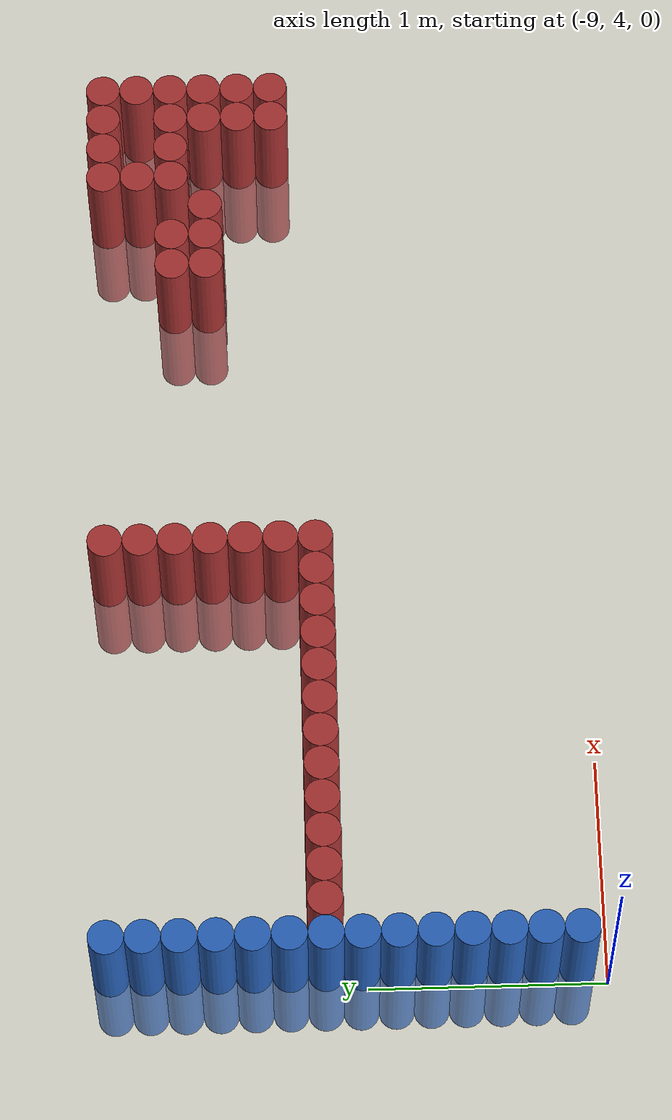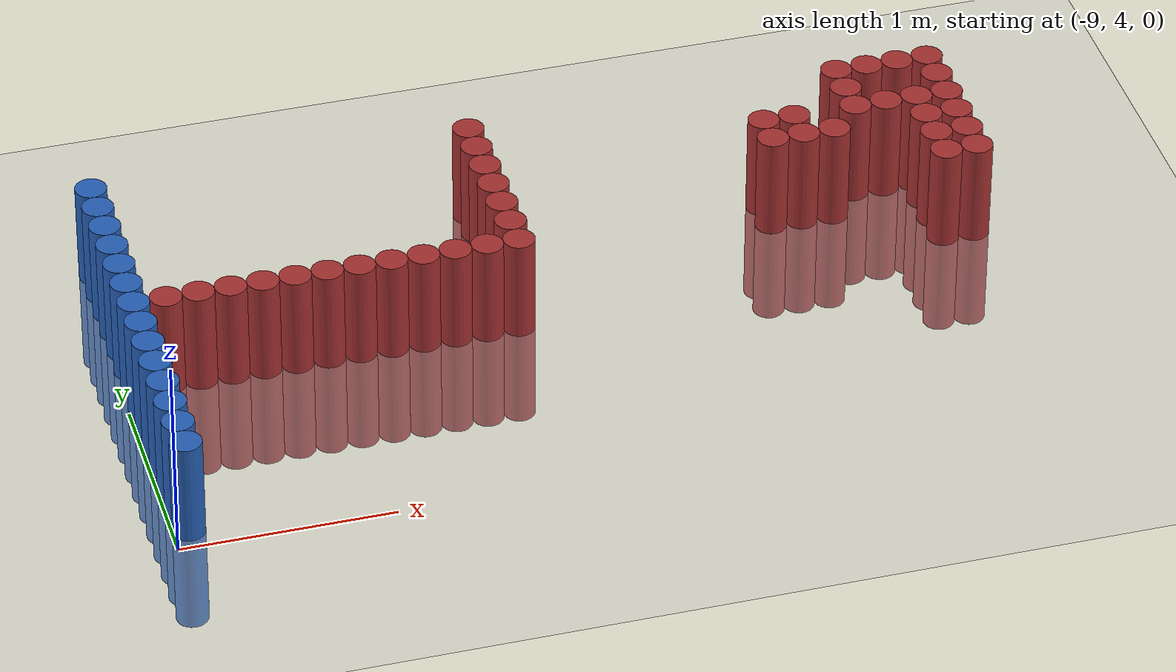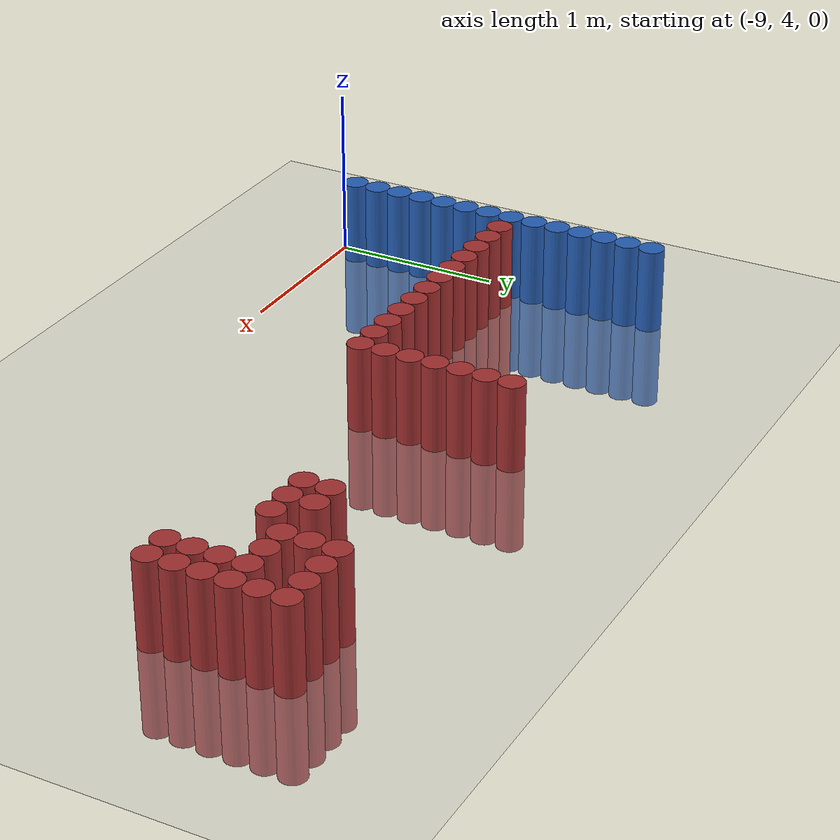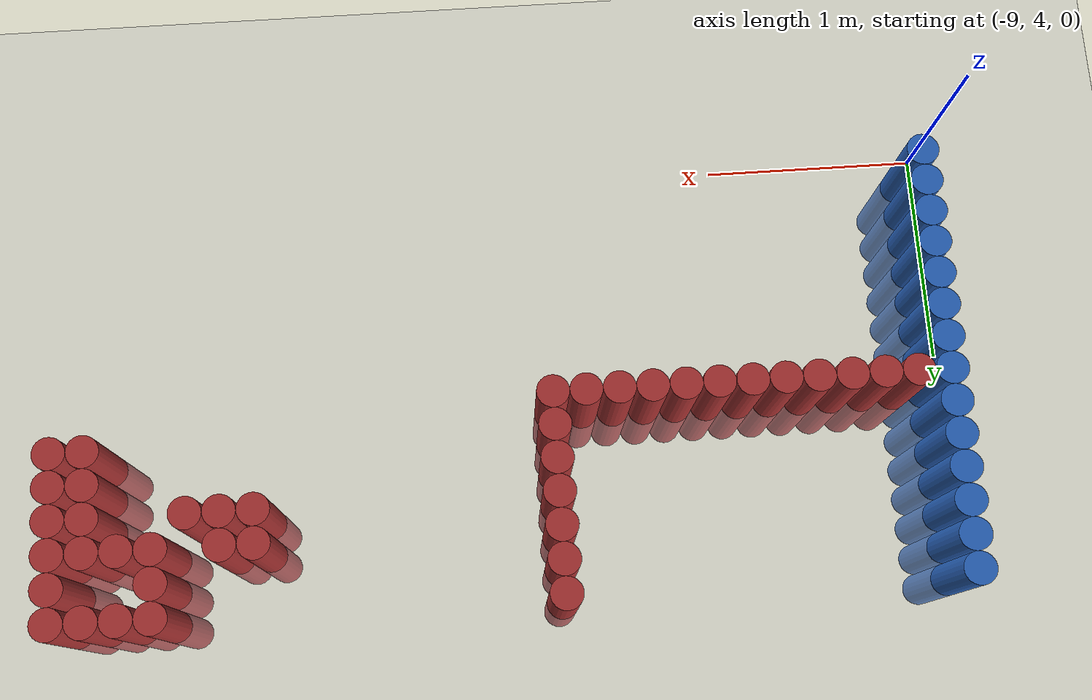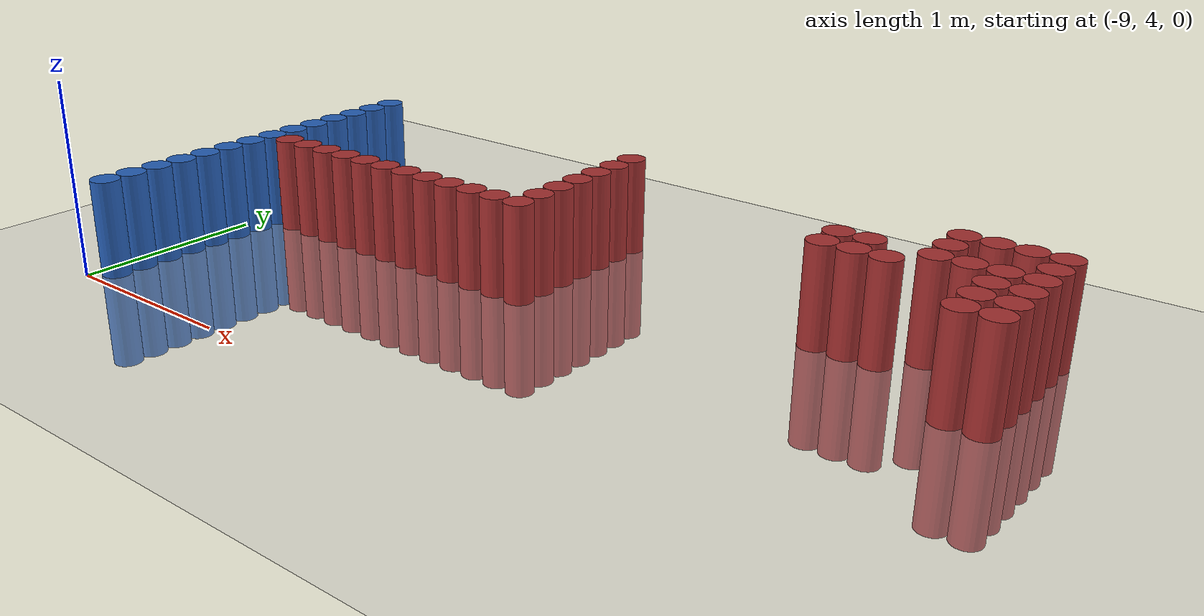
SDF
<sdf version="1.6">
 <world name="default">
  <model name="ground_plane">
   <static>1</static>
   <link name="link">
    <collision name="collision">
     <geometry><plane><normal>0 0 1</normal><size>100 100</size></plane></geometry>
     <surface><friction><ode><mu>100</mu><mu2>50</mu2></ode></friction></surface>
    </collision>
    <visual name="visual">
     <cast_shadows>0</cast_shadows>
     <geometry><plane><normal>0 0 1</normal><size>100 100</size></plane></geometry>
     <material>
      <script><uri>file://media/materials/scripts/gazebo.material</uri><name>Gazebo/Grey</name></script>
     </material>
    </visual>
   </link>
  </model>
  <model name="unit_cylinder_112">
   <static>1</static>
   <pose>-8.925000 4.125000 0.000000 0.000000 0.000000 0.000000</pose>
   <link name="link">
    <inertial>
     <mass>1</mass>
     <inertia><ixx>0.145833</ixx><ixy>0</ixy><ixz>0</ixz><iyy>0.145833</iyy><iyz>0</iyz><izz>0.125</izz></inertia>
    </inertial>
    <collision name="collision">
     <geometry><cylinder><radius>0.075000</radius><length>1</length></cylinder></geometry>
    </collision>
    <visual name="visual">
     <geometry><cylinder><radius>0.075000</radius><length>1</length></cylinder></geometry>
     <material>
      <ambient>0.152000 0.379000 0.720000 1</ambient>
      <diffuse>0.152000 0.379000 0.720000 1</diffuse>
     </material>
     <material>
      <script><name>Gazebo/Grey</name><uri>file://media/materials/scripts/gazebo.material</uri></script>
     </material>
    </visual>
   </link>
  </model>
  <model name="unit_cylinder_114">
   <static>1</static>
   <pose>-8.925000 4.275000 0.000000 0.000000 0.000000 0.000000</pose>
   <link name="link">
    <inertial>
     <mass>1</mass>
     <inertia><ixx>0.145833</ixx><ixy>0</ixy><ixz>0</ixz><iyy>0.145833</iyy><iyz>0</iyz><izz>0.125</izz></inertia>
    </inertial>
    <collision name="collision">
     <geometry><cylinder><radius>0.075000</radius><length>1</length></cylinder></geometry>
    </collision>
    <visual name="visual">
     <geometry><cylinder><radius>0.075000</radius><length>1</length></cylinder></geometry>
     <material>
      <ambient>0.152000 0.379000 0.720000 1</ambient>
      <diffuse>0.152000 0.379000 0.720000 1</diffuse>
     </material>
     <material>
      <script><name>Gazebo/Grey</name><uri>file://media/materials/scripts/gazebo.material</uri></script>
     </material>
    </visual>
   </link>
  </model>
  <model name="unit_cylinder_116">
   <static>1</static>
   <pose>-8.925000 4.425000 0.000000 0.000000 0.000000 0.000000</pose>
   <link name="link">
    <inertial>
     <mass>1</mass>
     <inertia><ixx>0.145833</ixx><ixy>0</ixy><ixz>0</ixz><iyy>0.145833</iyy><iyz>0</iyz><izz>0.125</izz></inertia>
    </inertial>
    <collision name="collision">
     <geometry><cylinder><radius>0.075000</radius><length>1</length></cylinder></geometry>
    </collision>
    <visual name="visual">
     <geometry><cylinder><radius>0.075000</radius><length>1</length></cylinder></geometry>
     <material>
      <ambient>0.152000 0.379000 0.720000 1</ambient>
      <diffuse>0.152000 0.379000 0.720000 1</diffuse>
     </material>
     <material>
      <script><name>Gazebo/Grey</name><uri>file://media/materials/scripts/gazebo.material</uri></script>
     </material>
    </visual>
   </link>
  </model>
  <model name="unit_cylinder_118">
   <static>1</static>
   <pose>-8.925000 4.575000 0.000000 0.000000 0.000000 0.000000</pose>
   <link name="link">
    <inertial>
     <mass>1</mass>
     <inertia><ixx>0.145833</ixx><ixy>0</ixy><ixz>0</ixz><iyy>0.145833</iyy><iyz>0</iyz><izz>0.125</izz></inertia>
    </inertial>
    <collision name="collision">
     <geometry><cylinder><radius>0.075000</radius><length>1</length></cylinder></geometry>
    </collision>
    <visual name="visual">
     <geometry><cylinder><radius>0.075000</radius><length>1</length></cylinder></geometry>
     <material>
      <ambient>0.152000 0.379000 0.720000 1</ambient>
      <diffuse>0.152000 0.379000 0.720000 1</diffuse>
     </material>
     <material>
      <script><name>Gazebo/Grey</name><uri>file://media/materials/scripts/gazebo.material</uri></script>
     </material>
    </visual>
   </link>
  </model>
  <model name="unit_cylinder_120">
   <static>1</static>
   <pose>-8.925000 4.725000 0.000000 0.000000 0.000000 0.000000</pose>
   <link name="link">
    <inertial>
     <mass>1</mass>
     <inertia><ixx>0.145833</ixx><ixy>0</ixy><ixz>0</ixz><iyy>0.145833</iyy><iyz>0</iyz><izz>0.125</izz></inertia>
    </inertial>
    <collision name="collision">
     <geometry><cylinder><radius>0.075000</radius><length>1</length></cylinder></geometry>
    </collision>
    <visual name="visual">
     <geometry><cylinder><radius>0.075000</radius><length>1</length></cylinder></geometry>
     <material>
      <ambient>0.152000 0.379000 0.720000 1</ambient>
      <diffuse>0.152000 0.379000 0.720000 1</diffuse>
     </material>
     <material>
      <script><name>Gazebo/Grey</name><uri>file://media/materials/scripts/gazebo.material</uri></script>
     </material>
    </visual>
   </link>
  </model>
  <model name="unit_cylinder_122">
   <static>1</static>
   <pose>-8.925000 4.875000 0.000000 0.000000 0.000000 0.000000</pose>
   <link name="link">
    <inertial>
     <mass>1</mass>
     <inertia><ixx>0.145833</ixx><ixy>0</ixy><ixz>0</ixz><iyy>0.145833</iyy><iyz>0</iyz><izz>0.125</izz></inertia>
    </inertial>
    <collision name="collision">
     <geometry><cylinder><radius>0.075000</radius><length>1</length></cylinder></geometry>
    </collision>
    <visual name="visual">
     <geometry><cylinder><radius>0.075000</radius><length>1</length></cylinder></geometry>
     <material>
      <ambient>0.152000 0.379000 0.720000 1</ambient>
      <diffuse>0.152000 0.379000 0.720000 1</diffuse>
     </material>
     <material>
      <script><name>Gazebo/Grey</name><uri>file://media/materials/scripts/gazebo.material</uri></script>
     </material>
    </visual>
   </link>
  </model>
  <model name="unit_cylinder_124">
   <static>1</static>
   <pose>-8.925000 5.025000 0.000000 0.000000 0.000000 0.000000</pose>
   <link name="link">
    <inertial>
     <mass>1</mass>
     <inertia><ixx>0.145833</ixx><ixy>0</ixy><ixz>0</ixz><iyy>0.145833</iyy><iyz>0</iyz><izz>0.125</izz></inertia>
    </inertial>
    <collision name="collision">
     <geometry><cylinder><radius>0.075000</radius><length>1</length></cylinder></geometry>
    </collision>
    <visual name="visual">
     <geometry><cylinder><radius>0.075000</radius><length>1</length></cylinder></geometry>
     <material>
      <ambient>0.152000 0.379000 0.720000 1</ambient>
      <diffuse>0.152000 0.379000 0.720000 1</diffuse>
     </material>
     <material>
      <script><name>Gazebo/Grey</name><uri>file://media/materials/scripts/gazebo.material</uri></script>
     </material>
    </visual>
   </link>
  </model>
  <model name="unit_cylinder_125">
   <static>1</static>
   <pose>-8.925000 5.175000 0.000000 0.000000 0.000000 0.000000</pose>
   <link name="link">
    <inertial>
     <mass>1</mass>
     <inertia><ixx>0.145833</ixx><ixy>0</ixy><ixz>0</ixz><iyy>0.145833</iyy><iyz>0</iyz><izz>0.125</izz></inertia>
    </inertial>
    <collision name="collision">
     <geometry><cylinder><radius>0.075000</radius><length>1</length></cylinder></geometry>
    </collision>
    <visual name="visual">
     <geometry><cylinder><radius>0.075000</radius><length>1</length></cylinder></geometry>
     <material>
      <ambient>0.152000 0.379000 0.720000 1</ambient>
      <diffuse>0.152000 0.379000 0.720000 1</diffuse>
     </material>
     <material>
      <script><name>Gazebo/Grey</name><uri>file://media/materials/scripts/gazebo.material</uri></script>
     </material>
    </visual>
   </link>
  </model>
  <model name="unit_cylinder_126">
   <static>1</static>
   <pose>-8.925000 5.325000 0.000000 0.000000 0.000000 0.000000</pose>
   <link name="link">
    <inertial>
     <mass>1</mass>
     <inertia><ixx>0.145833</ixx><ixy>0</ixy><ixz>0</ixz><iyy>0.145833</iyy><iyz>0</iyz><izz>0.125</izz></inertia>
    </inertial>
    <collision name="collision">
     <geometry><cylinder><radius>0.075000</radius><length>1</length></cylinder></geometry>
    </collision>
    <visual name="visual">
     <geometry><cylinder><radius>0.075000</radius><length>1</length></cylinder></geometry>
     <material>
      <ambient>0.152000 0.379000 0.720000 1</ambient>
      <diffuse>0.152000 0.379000 0.720000 1</diffuse>
     </material>
     <material>
      <script><name>Gazebo/Grey</name><uri>file://media/materials/scripts/gazebo.material</uri></script>
     </material>
    </visual>
   </link>
  </model>
  <model name="unit_cylinder_127">
   <static>1</static>
   <pose>-8.925000 5.475000 0.000000 0.000000 0.000000 0.000000</pose>
   <link name="link">
    <inertial>
     <mass>1</mass>
     <inertia><ixx>0.145833</ixx><ixy>0</ixy><ixz>0</ixz><iyy>0.145833</iyy><iyz>0</iyz><izz>0.125</izz></inertia>
    </inertial>
    <collision name="collision">
     <geometry><cylinder><radius>0.075000</radius><length>1</length></cylinder></geometry>
    </collision>
    <visual name="visual">
     <geometry><cylinder><radius>0.075000</radius><length>1</length></cylinder></geometry>
     <material>
      <ambient>0.152000 0.379000 0.720000 1</ambient>
      <diffuse>0.152000 0.379000 0.720000 1</diffuse>
     </material>
     <material>
      <script><name>Gazebo/Grey</name><uri>file://media/materials/scripts/gazebo.material</uri></script>
     </material>
    </visual>
   </link>
  </model>
  <model name="unit_cylinder_128">
   <static>1</static>
   <pose>-8.925000 5.625000 0.000000 0.000000 0.000000 0.000000</pose>
   <link name="link">
    <inertial>
     <mass>1</mass>
     <inertia><ixx>0.145833</ixx><ixy>0</ixy><ixz>0</ixz><iyy>0.145833</iyy><iyz>0</iyz><izz>0.125</izz></inertia>
    </inertial>
    <collision name="collision">
     <geometry><cylinder><radius>0.075000</radius><length>1</length></cylinder></geometry>
    </collision>
    <visual name="visual">
     <geometry><cylinder><radius>0.075000</radius><length>1</length></cylinder></geometry>
     <material>
      <ambient>0.152000 0.379000 0.720000 1</ambient>
      <diffuse>0.152000 0.379000 0.720000 1</diffuse>
     </material>
     <material>
      <script><name>Gazebo/Grey</name><uri>file://media/materials/scripts/gazebo.material</uri></script>
     </material>
    </visual>
   </link>
  </model>
  <model name="unit_cylinder_129">
   <static>1</static>
   <pose>-8.925000 5.775000 0.000000 0.000000 0.000000 0.000000</pose>
   <link name="link">
    <inertial>
     <mass>1</mass>
     <inertia><ixx>0.145833</ixx><ixy>0</ixy><ixz>0</ixz><iyy>0.145833</iyy><iyz>0</iyz><izz>0.125</izz></inertia>
    </inertial>
    <collision name="collision">
     <geometry><cylinder><radius>0.075000</radius><length>1</length></cylinder></geometry>
    </collision>
    <visual name="visual">
     <geometry><cylinder><radius>0.075000</radius><length>1</length></cylinder></geometry>
     <material>
      <ambient>0.152000 0.379000 0.720000 1</ambient>
      <diffuse>0.152000 0.379000 0.720000 1</diffuse>
     </material>
     <material>
      <script><name>Gazebo/Grey</name><uri>file://media/materials/scripts/gazebo.material</uri></script>
     </material>
    </visual>
   </link>
  </model>
  <model name="unit_cylinder_130">
   <static>1</static>
   <pose>-8.925000 5.925000 0.000000 0.000000 0.000000 0.000000</pose>
   <link name="link">
    <inertial>
     <mass>1</mass>
     <inertia><ixx>0.145833</ixx><ixy>0</ixy><ixz>0</ixz><iyy>0.145833</iyy><iyz>0</iyz><izz>0.125</izz></inertia>
    </inertial>
    <collision name="collision">
     <geometry><cylinder><radius>0.075000</radius><length>1</length></cylinder></geometry>
    </collision>
    <visual name="visual">
     <geometry><cylinder><radius>0.075000</radius><length>1</length></cylinder></geometry>
     <material>
      <ambient>0.152000 0.379000 0.720000 1</ambient>
      <diffuse>0.152000 0.379000 0.720000 1</diffuse>
     </material>
     <material>
      <script><name>Gazebo/Grey</name><uri>file://media/materials/scripts/gazebo.material</uri></script>
     </material>
    </visual>
   </link>
  </model>
  <model name="unit_cylinder_131">
   <static>1</static>
   <pose>-8.925000 6.075000 0.000000 0.000000 0.000000 0.000000</pose>
   <link name="link">
    <inertial>
     <mass>1</mass>
     <inertia><ixx>0.145833</ixx><ixy>0</ixy><ixz>0</ixz><iyy>0.145833</iyy><iyz>0</iyz><izz>0.125</izz></inertia>
    </inertial>
    <collision name="collision">
     <geometry><cylinder><radius>0.075000</radius><length>1</length></cylinder></geometry>
    </collision>
    <visual name="visual">
     <geometry><cylinder><radius>0.075000</radius><length>1</length></cylinder></geometry>
     <material>
      <ambient>0.152000 0.379000 0.720000 1</ambient>
      <diffuse>0.152000 0.379000 0.720000 1</diffuse>
     </material>
     <material>
      <script><name>Gazebo/Grey</name><uri>file://media/materials/scripts/gazebo.material</uri></script>
     </material>
    </visual>
   </link>
  </model>
  <model name="unit_cylinder_155">
   <static>1</static>
   <pose>-8.775000 5.175000 0.000000 0.000000 0.000000 0.000000</pose>
   <link name="link">
    <inertial>
     <mass>1</mass>
     <inertia><ixx>0.145833</ixx><ixy>0</ixy><ixz>0</ixz><iyy>0.145833</iyy><iyz>0</iyz><izz>0.125</izz></inertia>
    </inertial>
    <collision name="collision">
     <geometry><cylinder><radius>0.075000</radius><length>1</length></cylinder></geometry>
    </collision>
    <visual name="visual">
     <geometry><cylinder><radius>0.075000</radius><length>1</length></cylinder></geometry>
     <material>
      <ambient>0.648000 0.192000 0.192000 1</ambient>
      <diffuse>0.648000 0.192000 0.192000 1</diffuse>
     </material>
     <material>
      <script><name>Gazebo/Grey</name><uri>file://media/materials/scripts/gazebo.material</uri></script>
     </material>
    </visual>
   </link>
  </model>
  <model name="unit_cylinder_157">
   <static>1</static>
   <pose>-8.625000 5.175000 0.000000 0.000000 0.000000 0.000000</pose>
   <link name="link">
    <inertial>
     <mass>1</mass>
     <inertia><ixx>0.145833</ixx><ixy>0</ixy><ixz>0</ixz><iyy>0.145833</iyy><iyz>0</iyz><izz>0.125</izz></inertia>
    </inertial>
    <collision name="collision">
     <geometry><cylinder><radius>0.075000</radius><length>1</length></cylinder></geometry>
    </collision>
    <visual name="visual">
     <geometry><cylinder><radius>0.075000</radius><length>1</length></cylinder></geometry>
     <material>
      <ambient>0.648000 0.192000 0.192000 1</ambient>
      <diffuse>0.648000 0.192000 0.192000 1</diffuse>
     </material>
     <material>
      <script><name>Gazebo/Grey</name><uri>file://media/materials/scripts/gazebo.material</uri></script>
     </material>
    </visual>
   </link>
  </model>
  <model name="unit_cylinder_159">
   <static>1</static>
   <pose>-8.475000 5.175000 0.000000 0.000000 0.000000 0.000000</pose>
   <link name="link">
    <inertial>
     <mass>1</mass>
     <inertia><ixx>0.145833</ixx><ixy>0</ixy><ixz>0</ixz><iyy>0.145833</iyy><iyz>0</iyz><izz>0.125</izz></inertia>
    </inertial>
    <collision name="collision">
     <geometry><cylinder><radius>0.075000</radius><length>1</length></cylinder></geometry>
    </collision>
    <visual name="visual">
     <geometry><cylinder><radius>0.075000</radius><length>1</length></cylinder></geometry>
     <material>
      <ambient>0.648000 0.192000 0.192000 1</ambient>
      <diffuse>0.648000 0.192000 0.192000 1</diffuse>
     </material>
     <material>
      <script><name>Gazebo/Grey</name><uri>file://media/materials/scripts/gazebo.material</uri></script>
     </material>
    </visual>
   </link>
  </model>
  <model name="unit_cylinder_161">
   <static>1</static>
   <pose>-8.325000 5.175000 0.000000 0.000000 0.000000 0.000000</pose>
   <link name="link">
    <inertial>
     <mass>1</mass>
     <inertia><ixx>0.145833</ixx><ixy>0</ixy><ixz>0</ixz><iyy>0.145833</iyy><iyz>0</iyz><izz>0.125</izz></inertia>
    </inertial>
    <collision name="collision">
     <geometry><cylinder><radius>0.075000</radius><length>1</length></cylinder></geometry>
    </collision>
    <visual name="visual">
     <geometry><cylinder><radius>0.075000</radius><length>1</length></cylinder></geometry>
     <material>
      <ambient>0.648000 0.192000 0.192000 1</ambient>
      <diffuse>0.648000 0.192000 0.192000 1</diffuse>
     </material>
     <material>
      <script><name>Gazebo/Grey</name><uri>file://media/materials/scripts/gazebo.material</uri></script>
     </material>
    </visual>
   </link>
  </model>
  <model name="unit_cylinder_163">
   <static>1</static>
   <pose>-8.175000 5.175000 0.000000 0.000000 0.000000 0.000000</pose>
   <link name="link">
    <inertial>
     <mass>1</mass>
     <inertia><ixx>0.145833</ixx><ixy>0</ixy><ixz>0</ixz><iyy>0.145833</iyy><iyz>0</iyz><izz>0.125</izz></inertia>
    </inertial>
    <collision name="collision">
     <geometry><cylinder><radius>0.075000</radius><length>1</length></cylinder></geometry>
    </collision>
    <visual name="visual">
     <geometry><cylinder><radius>0.075000</radius><length>1</length></cylinder></geometry>
     <material>
      <ambient>0.648000 0.192000 0.192000 1</ambient>
      <diffuse>0.648000 0.192000 0.192000 1</diffuse>
     </material>
     <material>
      <script><name>Gazebo/Grey</name><uri>file://media/materials/scripts/gazebo.material</uri></script>
     </material>
    </visual>
   </link>
  </model>
  <model name="unit_cylinder_165">
   <static>1</static>
   <pose>-8.025000 5.175000 0.000000 0.000000 0.000000 0.000000</pose>
   <link name="link">
    <inertial>
     <mass>1</mass>
     <inertia><ixx>0.145833</ixx><ixy>0</ixy><ixz>0</ixz><iyy>0.145833</iyy><iyz>0</iyz><izz>0.125</izz></inertia>
    </inertial>
    <collision name="collision">
     <geometry><cylinder><radius>0.075000</radius><length>1</length></cylinder></geometry>
    </collision>
    <visual name="visual">
     <geometry><cylinder><radius>0.075000</radius><length>1</length></cylinder></geometry>
     <material>
      <ambient>0.648000 0.192000 0.192000 1</ambient>
      <diffuse>0.648000 0.192000 0.192000 1</diffuse>
     </material>
     <material>
      <script><name>Gazebo/Grey</name><uri>file://media/materials/scripts/gazebo.material</uri></script>
     </material>
    </visual>
   </link>
  </model>
  <model name="unit_cylinder_167">
   <static>1</static>
   <pose>-7.875000 5.175000 0.000000 0.000000 0.000000 0.000000</pose>
   <link name="link">
    <inertial>
     <mass>1</mass>
     <inertia><ixx>0.145833</ixx><ixy>0</ixy><ixz>0</ixz><iyy>0.145833</iyy><iyz>0</iyz><izz>0.125</izz></inertia>
    </inertial>
    <collision name="collision">
     <geometry><cylinder><radius>0.075000</radius><length>1</length></cylinder></geometry>
    </collision>
    <visual name="visual">
     <geometry><cylinder><radius>0.075000</radius><length>1</length></cylinder></geometry>
     <material>
      <ambient>0.648000 0.192000 0.192000 1</ambient>
      <diffuse>0.648000 0.192000 0.192000 1</diffuse>
     </material>
     <material>
      <script><name>Gazebo/Grey</name><uri>file://media/materials/scripts/gazebo.material</uri></script>
     </material>
    </visual>
   </link>
  </model>
  <model name="unit_cylinder_169">
   <static>1</static>
   <pose>-7.725000 5.175000 0.000000 0.000000 0.000000 0.000000</pose>
   <link name="link">
    <inertial>
     <mass>1</mass>
     <inertia><ixx>0.145833</ixx><ixy>0</ixy><ixz>0</ixz><iyy>0.145833</iyy><iyz>0</iyz><izz>0.125</izz></inertia>
    </inertial>
    <collision name="collision">
     <geometry><cylinder><radius>0.075000</radius><length>1</length></cylinder></geometry>
    </collision>
    <visual name="visual">
     <geometry><cylinder><radius>0.075000</radius><length>1</length></cylinder></geometry>
     <material>
      <ambient>0.648000 0.192000 0.192000 1</ambient>
      <diffuse>0.648000 0.192000 0.192000 1</diffuse>
     </material>
     <material>
      <script><name>Gazebo/Grey</name><uri>file://media/materials/scripts/gazebo.material</uri></script>
     </material>
    </visual>
   </link>
  </model>
  <model name="unit_cylinder_171">
   <static>1</static>
   <pose>-7.575000 5.175000 0.000000 0.000000 0.000000 0.000000</pose>
   <link name="link">
    <inertial>
     <mass>1</mass>
     <inertia><ixx>0.145833</ixx><ixy>0</ixy><ixz>0</ixz><iyy>0.145833</iyy><iyz>0</iyz><izz>0.125</izz></inertia>
    </inertial>
    <collision name="collision">
     <geometry><cylinder><radius>0.075000</radius><length>1</length></cylinder></geometry>
    </collision>
    <visual name="visual">
     <geometry><cylinder><radius>0.075000</radius><length>1</length></cylinder></geometry>
     <material>
      <ambient>0.648000 0.192000 0.192000 1</ambient>
      <diffuse>0.648000 0.192000 0.192000 1</diffuse>
     </material>
     <material>
      <script><name>Gazebo/Grey</name><uri>file://media/materials/scripts/gazebo.material</uri></script>
     </material>
    </visual>
   </link>
  </model>
  <model name="unit_cylinder_173">
   <static>1</static>
   <pose>-7.425000 5.175000 0.000000 0.000000 0.000000 0.000000</pose>
   <link name="link">
    <inertial>
     <mass>1</mass>
     <inertia><ixx>0.145833</ixx><ixy>0</ixy><ixz>0</ixz><iyy>0.145833</iyy><iyz>0</iyz><izz>0.125</izz></inertia>
    </inertial>
    <collision name="collision">
     <geometry><cylinder><radius>0.075000</radius><length>1</length></cylinder></geometry>
    </collision>
    <visual name="visual">
     <geometry><cylinder><radius>0.075000</radius><length>1</length></cylinder></geometry>
     <material>
      <ambient>0.648000 0.192000 0.192000 1</ambient>
      <diffuse>0.648000 0.192000 0.192000 1</diffuse>
     </material>
     <material>
      <script><name>Gazebo/Grey</name><uri>file://media/materials/scripts/gazebo.material</uri></script>
     </material>
    </visual>
   </link>
  </model>
  <model name="unit_cylinder_175">
   <static>1</static>
   <pose>-7.275000 5.175000 0.000000 0.000000 0.000000 0.000000</pose>
   <link name="link">
    <inertial>
     <mass>1</mass>
     <inertia><ixx>0.145833</ixx><ixy>0</ixy><ixz>0</ixz><iyy>0.145833</iyy><iyz>0</iyz><izz>0.125</izz></inertia>
    </inertial>
    <collision name="collision">
     <geometry><cylinder><radius>0.075000</radius><length>1</length></cylinder></geometry>
    </collision>
    <visual name="visual">
     <geometry><cylinder><radius>0.075000</radius><length>1</length></cylinder></geometry>
     <material>
      <ambient>0.648000 0.192000 0.192000 1</ambient>
      <diffuse>0.648000 0.192000 0.192000 1</diffuse>
     </material>
     <material>
      <script><name>Gazebo/Grey</name><uri>file://media/materials/scripts/gazebo.material</uri></script>
     </material>
    </visual>
   </link>
  </model>
  <model name="unit_cylinder_177">
   <static>1</static>
   <pose>-7.125000 5.175000 0.000000 0.000000 0.000000 0.000000</pose>
   <link name="link">
    <inertial>
     <mass>1</mass>
     <inertia><ixx>0.145833</ixx><ixy>0</ixy><ixz>0</ixz><iyy>0.145833</iyy><iyz>0</iyz><izz>0.125</izz></inertia>
    </inertial>
    <collision name="collision">
     <geometry><cylinder><radius>0.075000</radius><length>1</length></cylinder></geometry>
    </collision>
    <visual name="visual">
     <geometry><cylinder><radius>0.075000</radius><length>1</length></cylinder></geometry>
     <material>
      <ambient>0.648000 0.192000 0.192000 1</ambient>
      <diffuse>0.648000 0.192000 0.192000 1</diffuse>
     </material>
     <material>
      <script><name>Gazebo/Grey</name><uri>file://media/materials/scripts/gazebo.material</uri></script>
     </material>
    </visual>
   </link>
  </model>
  <model name="unit_cylinder_178">
   <static>1</static>
   <pose>-7.125000 5.325000 0.000000 0.000000 0.000000 0.000000</pose>
   <link name="link">
    <inertial>
     <mass>1</mass>
     <inertia><ixx>0.145833</ixx><ixy>0</ixy><ixz>0</ixz><iyy>0.145833</iyy><iyz>0</iyz><izz>0.125</izz></inertia>
    </inertial>
    <collision name="collision">
     <geometry><cylinder><radius>0.075000</radius><length>1</length></cylinder></geometry>
    </collision>
    <visual name="visual">
     <geometry><cylinder><radius>0.075000</radius><length>1</length></cylinder></geometry>
     <material>
      <ambient>0.648000 0.192000 0.192000 1</ambient>
      <diffuse>0.648000 0.192000 0.192000 1</diffuse>
     </material>
     <material>
      <script><name>Gazebo/Grey</name><uri>file://media/materials/scripts/gazebo.material</uri></script>
     </material>
    </visual>
   </link>
  </model>
  <model name="unit_cylinder_179">
   <static>1</static>
   <pose>-7.125000 5.475000 0.000000 0.000000 0.000000 0.000000</pose>
   <link name="link">
    <inertial>
     <mass>1</mass>
     <inertia><ixx>0.145833</ixx><ixy>0</ixy><ixz>0</ixz><iyy>0.145833</iyy><iyz>0</iyz><izz>0.125</izz></inertia>
    </inertial>
    <collision name="collision">
     <geometry><cylinder><radius>0.075000</radius><length>1</length></cylinder></geometry>
    </collision>
    <visual name="visual">
     <geometry><cylinder><radius>0.075000</radius><length>1</length></cylinder></geometry>
     <material>
      <ambient>0.648000 0.192000 0.192000 1</ambient>
      <diffuse>0.648000 0.192000 0.192000 1</diffuse>
     </material>
     <material>
      <script><name>Gazebo/Grey</name><uri>file://media/materials/scripts/gazebo.material</uri></script>
     </material>
    </visual>
   </link>
  </model>
  <model name="unit_cylinder_180">
   <static>1</static>
   <pose>-7.125000 5.625000 0.000000 0.000000 0.000000 0.000000</pose>
   <link name="link">
    <inertial>
     <mass>1</mass>
     <inertia><ixx>0.145833</ixx><ixy>0</ixy><ixz>0</ixz><iyy>0.145833</iyy><iyz>0</iyz><izz>0.125</izz></inertia>
    </inertial>
    <collision name="collision">
     <geometry><cylinder><radius>0.075000</radius><length>1</length></cylinder></geometry>
    </collision>
    <visual name="visual">
     <geometry><cylinder><radius>0.075000</radius><length>1</length></cylinder></geometry>
     <material>
      <ambient>0.648000 0.192000 0.192000 1</ambient>
      <diffuse>0.648000 0.192000 0.192000 1</diffuse>
     </material>
     <material>
      <script><name>Gazebo/Grey</name><uri>file://media/materials/scripts/gazebo.material</uri></script>
     </material>
    </visual>
   </link>
  </model>
  <model name="unit_cylinder_181">
   <static>1</static>
   <pose>-7.125000 5.775000 0.000000 0.000000 0.000000 0.000000</pose>
   <link name="link">
    <inertial>
     <mass>1</mass>
     <inertia><ixx>0.145833</ixx><ixy>0</ixy><ixz>0</ixz><iyy>0.145833</iyy><iyz>0</iyz><izz>0.125</izz></inertia>
    </inertial>
    <collision name="collision">
     <geometry><cylinder><radius>0.075000</radius><length>1</length></cylinder></geometry>
    </collision>
    <visual name="visual">
     <geometry><cylinder><radius>0.075000</radius><length>1</length></cylinder></geometry>
     <material>
      <ambient>0.648000 0.192000 0.192000 1</ambient>
      <diffuse>0.648000 0.192000 0.192000 1</diffuse>
     </material>
     <material>
      <script><name>Gazebo/Grey</name><uri>file://media/materials/scripts/gazebo.material</uri></script>
     </material>
    </visual>
   </link>
  </model>
  <model name="unit_cylinder_182">
   <static>1</static>
   <pose>-7.125000 5.925000 0.000000 0.000000 0.000000 0.000000</pose>
   <link name="link">
    <inertial>
     <mass>1</mass>
     <inertia><ixx>0.145833</ixx><ixy>0</ixy><ixz>0</ixz><iyy>0.145833</iyy><iyz>0</iyz><izz>0.125</izz></inertia>
    </inertial>
    <collision name="collision">
     <geometry><cylinder><radius>0.075000</radius><length>1</length></cylinder></geometry>
    </collision>
    <visual name="visual">
     <geometry><cylinder><radius>0.075000</radius><length>1</length></cylinder></geometry>
     <material>
      <ambient>0.648000 0.192000 0.192000 1</ambient>
      <diffuse>0.648000 0.192000 0.192000 1</diffuse>
     </material>
     <material>
      <script><name>Gazebo/Grey</name><uri>file://media/materials/scripts/gazebo.material</uri></script>
     </material>
    </visual>
   </link>
  </model>
  <model name="unit_cylinder_183">
   <static>1</static>
   <pose>-7.125000 6.075000 0.000000 0.000000 0.000000 0.000000</pose>
   <link name="link">
    <inertial>
     <mass>1</mass>
     <inertia><ixx>0.145833</ixx><ixy>0</ixy><ixz>0</ixz><iyy>0.145833</iyy><iyz>0</iyz><izz>0.125</izz></inertia>
    </inertial>
    <collision name="collision">
     <geometry><cylinder><radius>0.075000</radius><length>1</length></cylinder></geometry>
    </collision>
    <visual name="visual">
     <geometry><cylinder><radius>0.075000</radius><length>1</length></cylinder></geometry>
     <material>
      <ambient>0.648000 0.192000 0.192000 1</ambient>
      <diffuse>0.648000 0.192000 0.192000 1</diffuse>
     </material>
     <material>
      <script><name>Gazebo/Grey</name><uri>file://media/materials/scripts/gazebo.material</uri></script>
     </material>
    </visual>
   </link>
  </model>
  <model name="unit_cylinder_213">
   <static>1</static>
   <pose>-5.775000 5.625000 0.000000 0.000000 0.000000 0.000000</pose>
   <link name="link">
    <inertial>
     <mass>1</mass>
     <inertia><ixx>0.145833</ixx><ixy>0</ixy><ixz>0</ixz><iyy>0.145833</iyy><iyz>0</iyz><izz>0.125</izz></inertia>
    </inertial>
    <collision name="collision">
     <geometry><cylinder><radius>0.075000</radius><length>1</length></cylinder></geometry>
    </collision>
    <visual name="visual">
     <geometry><cylinder><radius>0.075000</radius><length>1</length></cylinder></geometry>
     <material>
      <ambient>0.648000 0.192000 0.192000 1</ambient>
      <diffuse>0.648000 0.192000 0.192000 1</diffuse>
     </material>
     <material>
      <script><name>Gazebo/Grey</name><uri>file://media/materials/scripts/gazebo.material</uri></script>
     </material>
    </visual>
   </link>
  </model>
  <model name="unit_cylinder_214">
   <static>1</static>
   <pose>-5.775000 5.775000 0.000000 0.000000 0.000000 0.000000</pose>
   <link name="link">
    <inertial>
     <mass>1</mass>
     <inertia><ixx>0.145833</ixx><ixy>0</ixy><ixz>0</ixz><iyy>0.145833</iyy><iyz>0</iyz><izz>0.125</izz></inertia>
    </inertial>
    <collision name="collision">
     <geometry><cylinder><radius>0.075000</radius><length>1</length></cylinder></geometry>
    </collision>
    <visual name="visual">
     <geometry><cylinder><radius>0.075000</radius><length>1</length></cylinder></geometry>
     <material>
      <ambient>0.648000 0.192000 0.192000 1</ambient>
      <diffuse>0.648000 0.192000 0.192000 1</diffuse>
     </material>
     <material>
      <script><name>Gazebo/Grey</name><uri>file://media/materials/scripts/gazebo.material</uri></script>
     </material>
    </visual>
   </link>
  </model>
  <model name="unit_cylinder_215">
   <static>1</static>
   <pose>-5.625000 5.625000 0.000000 0.000000 0.000000 0.000000</pose>
   <link name="link">
    <inertial>
     <mass>1</mass>
     <inertia><ixx>0.145833</ixx><ixy>0</ixy><ixz>0</ixz><iyy>0.145833</iyy><iyz>0</iyz><izz>0.125</izz></inertia>
    </inertial>
    <collision name="collision">
     <geometry><cylinder><radius>0.075000</radius><length>1</length></cylinder></geometry>
    </collision>
    <visual name="visual">
     <geometry><cylinder><radius>0.075000</radius><length>1</length></cylinder></geometry>
     <material>
      <ambient>0.648000 0.192000 0.192000 1</ambient>
      <diffuse>0.648000 0.192000 0.192000 1</diffuse>
     </material>
     <material>
      <script><name>Gazebo/Grey</name><uri>file://media/materials/scripts/gazebo.material</uri></script>
     </material>
    </visual>
   </link>
  </model>
  <model name="unit_cylinder_216">
   <static>1</static>
   <pose>-5.625000 5.775000 0.000000 0.000000 0.000000 0.000000</pose>
   <link name="link">
    <inertial>
     <mass>1</mass>
     <inertia><ixx>0.145833</ixx><ixy>0</ixy><ixz>0</ixz><iyy>0.145833</iyy><iyz>0</iyz><izz>0.125</izz></inertia>
    </inertial>
    <collision name="collision">
     <geometry><cylinder><radius>0.075000</radius><length>1</length></cylinder></geometry>
    </collision>
    <visual name="visual">
     <geometry><cylinder><radius>0.075000</radius><length>1</length></cylinder></geometry>
     <material>
      <ambient>0.648000 0.192000 0.192000 1</ambient>
      <diffuse>0.648000 0.192000 0.192000 1</diffuse>
     </material>
     <material>
      <script><name>Gazebo/Grey</name><uri>file://media/materials/scripts/gazebo.material</uri></script>
     </material>
    </visual>
   </link>
  </model>
  <model name="unit_cylinder_217">
   <static>1</static>
   <pose>-5.475000 5.625000 0.000000 0.000000 0.000000 0.000000</pose>
   <link name="link">
    <inertial>
     <mass>1</mass>
     <inertia><ixx>0.145833</ixx><ixy>0</ixy><ixz>0</ixz><iyy>0.145833</iyy><iyz>0</iyz><izz>0.125</izz></inertia>
    </inertial>
    <collision name="collision">
     <geometry><cylinder><radius>0.075000</radius><length>1</length></cylinder></geometry>
    </collision>
    <visual name="visual">
     <geometry><cylinder><radius>0.075000</radius><length>1</length></cylinder></geometry>
     <material>
      <ambient>0.648000 0.192000 0.192000 1</ambient>
      <diffuse>0.648000 0.192000 0.192000 1</diffuse>
     </material>
     <material>
      <script><name>Gazebo/Grey</name><uri>file://media/materials/scripts/gazebo.material</uri></script>
     </material>
    </visual>
   </link>
  </model>
  <model name="unit_cylinder_218">
   <static>1</static>
   <pose>-5.325000 5.775000 0.000000 0.000000 0.000000 0.000000</pose>
   <link name="link">
    <inertial>
     <mass>1</mass>
     <inertia><ixx>0.145833</ixx><ixy>0</ixy><ixz>0</ixz><iyy>0.145833</iyy><iyz>0</iyz><izz>0.125</izz></inertia>
    </inertial>
    <collision name="collision">
     <geometry><cylinder><radius>0.075000</radius><length>1</length></cylinder></geometry>
    </collision>
    <visual name="visual">
     <geometry><cylinder><radius>0.075000</radius><length>1</length></cylinder></geometry>
     <material>
      <ambient>0.648000 0.192000 0.192000 1</ambient>
      <diffuse>0.648000 0.192000 0.192000 1</diffuse>
     </material>
     <material>
      <script><name>Gazebo/Grey</name><uri>file://media/materials/scripts/gazebo.material</uri></script>
     </material>
    </visual>
   </link>
  </model>
  <model name="unit_cylinder_219">
   <static>1</static>
   <pose>-5.325000 5.925000 0.000000 0.000000 0.000000 0.000000</pose>
   <link name="link">
    <inertial>
     <mass>1</mass>
     <inertia><ixx>0.145833</ixx><ixy>0</ixy><ixz>0</ixz><iyy>0.145833</iyy><iyz>0</iyz><izz>0.125</izz></inertia>
    </inertial>
    <collision name="collision">
     <geometry><cylinder><radius>0.075000</radius><length>1</length></cylinder></geometry>
    </collision>
    <visual name="visual">
     <geometry><cylinder><radius>0.075000</radius><length>1</length></cylinder></geometry>
     <material>
      <ambient>0.648000 0.192000 0.192000 1</ambient>
      <diffuse>0.648000 0.192000 0.192000 1</diffuse>
     </material>
     <material>
      <script><name>Gazebo/Grey</name><uri>file://media/materials/scripts/gazebo.material</uri></script>
     </material>
    </visual>
   </link>
  </model>
  <model name="unit_cylinder_220">
   <static>1</static>
   <pose>-5.325000 6.075000 0.000000 0.000000 0.000000 0.000000</pose>
   <link name="link">
    <inertial>
     <mass>1</mass>
     <inertia><ixx>0.145833</ixx><ixy>0</ixy><ixz>0</ixz><iyy>0.145833</iyy><iyz>0</iyz><izz>0.125</izz></inertia>
    </inertial>
    <collision name="collision">
     <geometry><cylinder><radius>0.075000</radius><length>1</length></cylinder></geometry>
    </collision>
    <visual name="visual">
     <geometry><cylinder><radius>0.075000</radius><length>1</length></cylinder></geometry>
     <material>
      <ambient>0.648000 0.192000 0.192000 1</ambient>
      <diffuse>0.648000 0.192000 0.192000 1</diffuse>
     </material>
     <material>
      <script><name>Gazebo/Grey</name><uri>file://media/materials/scripts/gazebo.material</uri></script>
     </material>
    </visual>
   </link>
  </model>
  <model name="unit_cylinder_228">
   <static>1</static>
   <pose>-5.175000 5.775000 0.000000 0.000000 0.000000 0.000000</pose>
   <link name="link">
    <inertial>
     <mass>1</mass>
     <inertia><ixx>0.145833</ixx><ixy>0</ixy><ixz>0</ixz><iyy>0.145833</iyy><iyz>0</iyz><izz>0.125</izz></inertia>
    </inertial>
    <collision name="collision">
     <geometry><cylinder><radius>0.075000</radius><length>1</length></cylinder></geometry>
    </collision>
    <visual name="visual">
     <geometry><cylinder><radius>0.075000</radius><length>1</length></cylinder></geometry>
     <material>
      <ambient>0.648000 0.192000 0.192000 1</ambient>
      <diffuse>0.648000 0.192000 0.192000 1</diffuse>
     </material>
     <material>
      <script><name>Gazebo/Grey</name><uri>file://media/materials/scripts/gazebo.material</uri></script>
     </material>
    </visual>
   </link>
  </model>
  <model name="unit_cylinder_229">
   <static>1</static>
   <pose>-5.175000 6.075000 0.000000 0.000000 0.000000 0.000000</pose>
   <link name="link">
    <inertial>
     <mass>1</mass>
     <inertia><ixx>0.145833</ixx><ixy>0</ixy><ixz>0</ixz><iyy>0.145833</iyy><iyz>0</iyz><izz>0.125</izz></inertia>
    </inertial>
    <collision name="collision">
     <geometry><cylinder><radius>0.075000</radius><length>1</length></cylinder></geometry>
    </collision>
    <visual name="visual">
     <geometry><cylinder><radius>0.075000</radius><length>1</length></cylinder></geometry>
     <material>
      <ambient>0.648000 0.192000 0.192000 1</ambient>
      <diffuse>0.648000 0.192000 0.192000 1</diffuse>
     </material>
     <material>
      <script><name>Gazebo/Grey</name><uri>file://media/materials/scripts/gazebo.material</uri></script>
     </material>
    </visual>
   </link>
  </model>
  <model name="unit_cylinder_241">
   <static>1</static>
   <pose>-5.025000 5.325000 0.000000 0.000000 0.000000 0.000000</pose>
   <link name="link">
    <inertial>
     <mass>1</mass>
     <inertia><ixx>0.145833</ixx><ixy>0</ixy><ixz>0</ixz><iyy>0.145833</iyy><iyz>0</iyz><izz>0.125</izz></inertia>
    </inertial>
    <collision name="collision">
     <geometry><cylinder><radius>0.075000</radius><length>1</length></cylinder></geometry>
    </collision>
    <visual name="visual">
     <geometry><cylinder><radius>0.075000</radius><length>1</length></cylinder></geometry>
     <material>
      <ambient>0.648000 0.192000 0.192000 1</ambient>
      <diffuse>0.648000 0.192000 0.192000 1</diffuse>
     </material>
     <material>
      <script><name>Gazebo/Grey</name><uri>file://media/materials/scripts/gazebo.material</uri></script>
     </material>
    </visual>
   </link>
  </model>
  <model name="unit_cylinder_242">
   <static>1</static>
   <pose>-5.025000 5.475000 0.000000 0.000000 0.000000 0.000000</pose>
   <link name="link">
    <inertial>
     <mass>1</mass>
     <inertia><ixx>0.145833</ixx><ixy>0</ixy><ixz>0</ixz><iyy>0.145833</iyy><iyz>0</iyz><izz>0.125</izz></inertia>
    </inertial>
    <collision name="collision">
     <geometry><cylinder><radius>0.075000</radius><length>1</length></cylinder></geometry>
    </collision>
    <visual name="visual">
     <geometry><cylinder><radius>0.075000</radius><length>1</length></cylinder></geometry>
     <material>
      <ambient>0.648000 0.192000 0.192000 1</ambient>
      <diffuse>0.648000 0.192000 0.192000 1</diffuse>
     </material>
     <material>
      <script><name>Gazebo/Grey</name><uri>file://media/materials/scripts/gazebo.material</uri></script>
     </material>
    </visual>
   </link>
  </model>
  <model name="unit_cylinder_243">
   <static>1</static>
   <pose>-5.025000 5.625000 0.000000 0.000000 0.000000 0.000000</pose>
   <link name="link">
    <inertial>
     <mass>1</mass>
     <inertia><ixx>0.145833</ixx><ixy>0</ixy><ixz>0</ixz><iyy>0.145833</iyy><iyz>0</iyz><izz>0.125</izz></inertia>
    </inertial>
    <collision name="collision">
     <geometry><cylinder><radius>0.075000</radius><length>1</length></cylinder></geometry>
    </collision>
    <visual name="visual">
     <geometry><cylinder><radius>0.075000</radius><length>1</length></cylinder></geometry>
     <material>
      <ambient>0.648000 0.192000 0.192000 1</ambient>
      <diffuse>0.648000 0.192000 0.192000 1</diffuse>
     </material>
     <material>
      <script><name>Gazebo/Grey</name><uri>file://media/materials/scripts/gazebo.material</uri></script>
     </material>
    </visual>
   </link>
  </model>
  <model name="unit_cylinder_244">
   <static>1</static>
   <pose>-5.025000 5.775000 0.000000 0.000000 0.000000 0.000000</pose>
   <link name="link">
    <inertial>
     <mass>1</mass>
     <inertia><ixx>0.145833</ixx><ixy>0</ixy><ixz>0</ixz><iyy>0.145833</iyy><iyz>0</iyz><izz>0.125</izz></inertia>
    </inertial>
    <collision name="collision">
     <geometry><cylinder><radius>0.075000</radius><length>1</length></cylinder></geometry>
    </collision>
    <visual name="visual">
     <geometry><cylinder><radius>0.075000</radius><length>1</length></cylinder></geometry>
     <material>
      <ambient>0.648000 0.192000 0.192000 1</ambient>
      <diffuse>0.648000 0.192000 0.192000 1</diffuse>
     </material>
     <material>
      <script><name>Gazebo/Grey</name><uri>file://media/materials/scripts/gazebo.material</uri></script>
     </material>
    </visual>
   </link>
  </model>
  <model name="unit_cylinder_245">
   <static>1</static>
   <pose>-5.025000 6.075000 0.000000 0.000000 0.000000 0.000000</pose>
   <link name="link">
    <inertial>
     <mass>1</mass>
     <inertia><ixx>0.145833</ixx><ixy>0</ixy><ixz>0</ixz><iyy>0.145833</iyy><iyz>0</iyz><izz>0.125</izz></inertia>
    </inertial>
    <collision name="collision">
     <geometry><cylinder><radius>0.075000</radius><length>1</length></cylinder></geometry>
    </collision>
    <visual name="visual">
     <geometry><cylinder><radius>0.075000</radius><length>1</length></cylinder></geometry>
     <material>
      <ambient>0.648000 0.192000 0.192000 1</ambient>
      <diffuse>0.648000 0.192000 0.192000 1</diffuse>
     </material>
     <material>
      <script><name>Gazebo/Grey</name><uri>file://media/materials/scripts/gazebo.material</uri></script>
     </material>
    </visual>
   </link>
  </model>
  <model name="unit_cylinder_259">
   <static>1</static>
   <pose>-4.875000 5.325000 0.000000 0.000000 0.000000 0.000000</pose>
   <link name="link">
    <inertial>
     <mass>1</mass>
     <inertia><ixx>0.145833</ixx><ixy>0</ixy><ixz>0</ixz><iyy>0.145833</iyy><iyz>0</iyz><izz>0.125</izz></inertia>
    </inertial>
    <collision name="collision">
     <geometry><cylinder><radius>0.075000</radius><length>1</length></cylinder></geometry>
    </collision>
    <visual name="visual">
     <geometry><cylinder><radius>0.075000</radius><length>1</length></cylinder></geometry>
     <material>
      <ambient>0.648000 0.192000 0.192000 1</ambient>
      <diffuse>0.648000 0.192000 0.192000 1</diffuse>
     </material>
     <material>
      <script><name>Gazebo/Grey</name><uri>file://media/materials/scripts/gazebo.material</uri></script>
     </material>
    </visual>
   </link>
  </model>
  <model name="unit_cylinder_260">
   <static>1</static>
   <pose>-4.875000 5.475000 0.000000 0.000000 0.000000 0.000000</pose>
   <link name="link">
    <inertial>
     <mass>1</mass>
     <inertia><ixx>0.145833</ixx><ixy>0</ixy><ixz>0</ixz><iyy>0.145833</iyy><iyz>0</iyz><izz>0.125</izz></inertia>
    </inertial>
    <collision name="collision">
     <geometry><cylinder><radius>0.075000</radius><length>1</length></cylinder></geometry>
    </collision>
    <visual name="visual">
     <geometry><cylinder><radius>0.075000</radius><length>1</length></cylinder></geometry>
     <material>
      <ambient>0.648000 0.192000 0.192000 1</ambient>
      <diffuse>0.648000 0.192000 0.192000 1</diffuse>
     </material>
     <material>
      <script><name>Gazebo/Grey</name><uri>file://media/materials/scripts/gazebo.material</uri></script>
     </material>
    </visual>
   </link>
  </model>
  <model name="unit_cylinder_261">
   <static>1</static>
   <pose>-4.875000 5.625000 0.000000 0.000000 0.000000 0.000000</pose>
   <link name="link">
    <inertial>
     <mass>1</mass>
     <inertia><ixx>0.145833</ixx><ixy>0</ixy><ixz>0</ixz><iyy>0.145833</iyy><iyz>0</iyz><izz>0.125</izz></inertia>
    </inertial>
    <collision name="collision">
     <geometry><cylinder><radius>0.075000</radius><length>1</length></cylinder></geometry>
    </collision>
    <visual name="visual">
     <geometry><cylinder><radius>0.075000</radius><length>1</length></cylinder></geometry>
     <material>
      <ambient>0.648000 0.192000 0.192000 1</ambient>
      <diffuse>0.648000 0.192000 0.192000 1</diffuse>
     </material>
     <material>
      <script><name>Gazebo/Grey</name><uri>file://media/materials/scripts/gazebo.material</uri></script>
     </material>
    </visual>
   </link>
  </model>
  <model name="unit_cylinder_262">
   <static>1</static>
   <pose>-4.875000 5.775000 0.000000 0.000000 0.000000 0.000000</pose>
   <link name="link">
    <inertial>
     <mass>1</mass>
     <inertia><ixx>0.145833</ixx><ixy>0</ixy><ixz>0</ixz><iyy>0.145833</iyy><iyz>0</iyz><izz>0.125</izz></inertia>
    </inertial>
    <collision name="collision">
     <geometry><cylinder><radius>0.075000</radius><length>1</length></cylinder></geometry>
    </collision>
    <visual name="visual">
     <geometry><cylinder><radius>0.075000</radius><length>1</length></cylinder></geometry>
     <material>
      <ambient>0.648000 0.192000 0.192000 1</ambient>
      <diffuse>0.648000 0.192000 0.192000 1</diffuse>
     </material>
     <material>
      <script><name>Gazebo/Grey</name><uri>file://media/materials/scripts/gazebo.material</uri></script>
     </material>
    </visual>
   </link>
  </model>
  <model name="unit_cylinder_263">
   <static>1</static>
   <pose>-4.875000 5.925000 0.000000 0.000000 0.000000 0.000000</pose>
   <link name="link">
    <inertial>
     <mass>1</mass>
     <inertia><ixx>0.145833</ixx><ixy>0</ixy><ixz>0</ixz><iyy>0.145833</iyy><iyz>0</iyz><izz>0.125</izz></inertia>
    </inertial>
    <collision name="collision">
     <geometry><cylinder><radius>0.075000</radius><length>1</length></cylinder></geometry>
    </collision>
    <visual name="visual">
     <geometry><cylinder><radius>0.075000</radius><length>1</length></cylinder></geometry>
     <material>
      <ambient>0.648000 0.192000 0.192000 1</ambient>
      <diffuse>0.648000 0.192000 0.192000 1</diffuse>
     </material>
     <material>
      <script><name>Gazebo/Grey</name><uri>file://media/materials/scripts/gazebo.material</uri></script>
     </material>
    </visual>
   </link>
  </model>
  <model name="unit_cylinder_264">
   <static>1</static>
   <pose>-4.875000 6.075000 0.000000 0.000000 0.000000 0.000000</pose>
   <link name="link">
    <inertial>
     <mass>1</mass>
     <inertia><ixx>0.145833</ixx><ixy>0</ixy><ixz>0</ixz><iyy>0.145833</iyy><iyz>0</iyz><izz>0.125</izz></inertia>
    </inertial>
    <collision name="collision">
     <geometry><cylinder><radius>0.075000</radius><length>1</length></cylinder></geometry>
    </collision>
    <visual name="visual">
     <geometry><cylinder><radius>0.075000</radius><length>1</length></cylinder></geometry>
     <material>
      <ambient>0.648000 0.192000 0.192000 1</ambient>
      <diffuse>0.648000 0.192000 0.192000 1</diffuse>
     </material>
     <material>
      <script><name>Gazebo/Grey</name><uri>file://media/materials/scripts/gazebo.material</uri></script>
     </material>
    </visual>
   </link>
  </model>
 </world>
</sdf>
